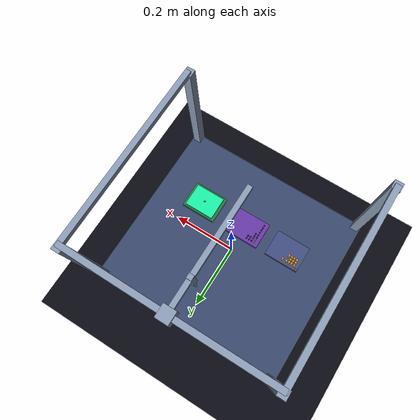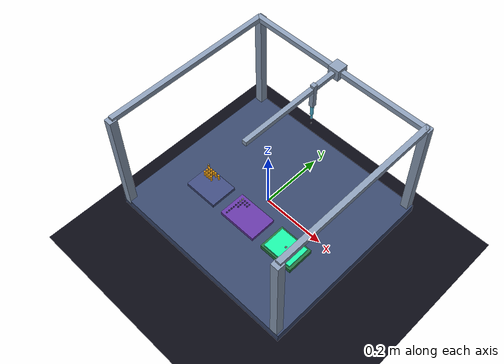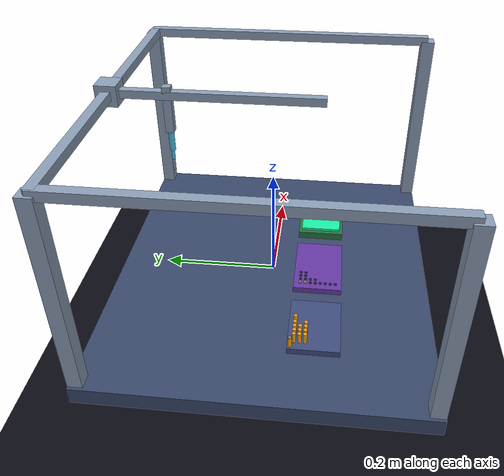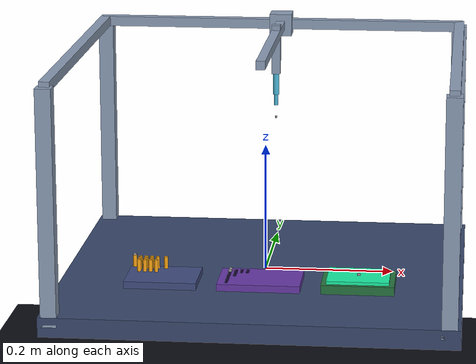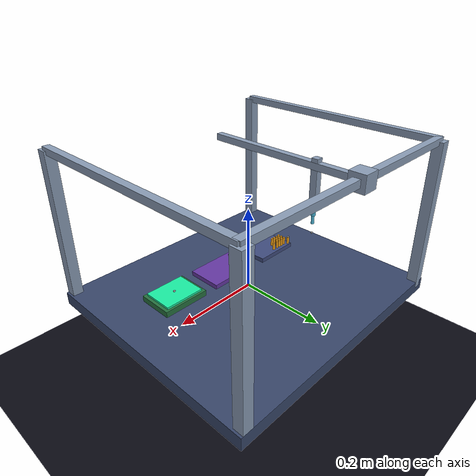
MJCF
<mujoco model="ot2_wetlab">
  <compiler angle="radian" autolimits="true"/>
  <option gravity="0 0 -9.81" timestep="0.002" integrator="RK4"/>

  <visual>
    <global offwidth="960" offheight="540"/>
    <headlight ambient=".45 .48 .58" diffuse=".9 .9 .95" specular=".3 .3 .3"/>
    <rgba haze=".07 .07 .12 1"/>
  </visual>

  <asset>
    <material name="deck"     rgba=".22 .28 .42 1"/>
    <material name="frame"    rgba=".55 .62 .72 1" specular=".8" shininess=".5"/>
    <material name="rack"     rgba=".25 .30 .50 1"/>
    <material name="plate"    rgba=".40 .22 .65 1"/>
    <material name="trough"   rgba=".15 .45 .25 1"/>
    <material name="pipette"  rgba=".30 .72 .85 1" specular=".9" shininess=".6"/>
    <material name="tip_idle" rgba=".98 .65 .08 1"/>
    <material name="tip_on"   rgba=".98 .88 .15 1" emission=".25"/>
    <material name="reagent"  rgba=".10 .95 .65 .95" emission=".05"/>
    <material name="liquid"   rgba=".10 .72 .98 .92" emission=".05"/>
    <material name="well_e"   rgba=".15 .10 .28 1"/>
    <material name="well_f"   rgba=".08 .55 .98 .95" emission=".12"/>
  </asset>

  <worldbody>
    <!-- Background floor -->
    <geom type="plane" size="1.5 1.5 .01" rgba=".04 .04 .08 1" pos="0 0 -.23"/>

    <!-- ── DECK ──────────────────────────────────────────────────── -->
    <body name="deck" pos="0 0 0">
      <geom type="box" size=".312 .282 .015" pos="0 0 -.015" material="deck"/>

      <!-- Corner posts -->
      <geom type="box" size=".012 .012 .18" pos="-.295 -.27  .165" material="frame"/>
      <geom type="box" size=".012 .012 .18" pos="-.295  .27  .165" material="frame"/>
      <geom type="box" size=".012 .012 .18" pos=" .295 -.27  .165" material="frame"/>
      <geom type="box" size=".012 .012 .18" pos=" .295  .27  .165" material="frame"/>
      <!-- X rail (top, back) -->
      <geom type="box" size=".300 .008 .008" pos="0 .265 .345" material="frame"/>
      <!-- Y support rails (sides) -->
      <geom type="box" size=".008 .270 .008" pos="-.295 0 .345" material="frame"/>
      <geom type="box" size=".008 .270 .008" pos=" .295 0 .345" material="frame"/>

      <!-- ── SLOT 1: TIPRACK  (x=-.152, y=-.085) ────────────────── -->
      <body name="tiprack" pos="-.152 -.085 0">
        <geom type="box" size=".056 .043 .007" pos="0 0 .004" material="rack"/>
        <!-- Tip grid: representative 4×3 block, rest implied -->
        <geom type="cylinder" size=".003 .011" pos="-.040  .032 .019" material="tip_idle"/>
        <geom type="cylinder" size=".003 .011" pos="-.040  .023 .019" material="tip_idle"/>
        <geom type="cylinder" size=".003 .011" pos="-.040  .014 .019" material="tip_idle"/>
        <geom type="cylinder" size=".003 .011" pos="-.031  .032 .019" material="tip_idle"/>
        <geom type="cylinder" size=".003 .011" pos="-.031  .023 .019" material="tip_idle"/>
        <geom type="cylinder" size=".003 .011" pos="-.031  .014 .019" material="tip_idle"/>
        <geom type="cylinder" size=".003 .011" pos="-.022  .032 .019" material="tip_idle"/>
        <geom type="cylinder" size=".003 .011" pos="-.022  .023 .019" material="tip_idle"/>
        <geom type="cylinder" size=".003 .011" pos="-.022  .014 .019" material="tip_idle"/>
        <geom type="cylinder" size=".003 .011" pos="-.013  .032 .019" material="tip_idle"/>
        <geom type="cylinder" size=".003 .011" pos="-.013  .014 .019" material="tip_idle"/>
        <geom type="cylinder" size=".003 .011" pos="  0    .032 .019" material="tip_idle"/>
        <!-- A1 tip (will be toggled via rgba in env) -->
        <geom name="tip_A1" type="cylinder" size=".003 .011" pos="-.050  .038 .019" material="tip_idle"/>
        <site name="site_tipA1" pos="-.050 .038 .030" size=".003"/>
      </body>

      <!-- ── SLOT 2: 96-WELL PLATE  (x=0, y=-.085) ──────────────── -->
      <body name="plate" pos="0 -.085 0">
        <geom type="box" size=".064 .043 .007" pos="0 0 .004" material="plate"/>
        <!-- Render all 8 rows × 4 cols (representative) -->
        <!-- Col 1 (x=-.050): rows A-H -->
        <geom name="w_A1" type="cylinder" size=".0027 .004" pos="-.050  .031 .008" material="well_e"/>
        <geom name="w_B1" type="cylinder" size=".0027 .004" pos="-.050  .022 .008" material="well_e"/>
        <geom name="w_C1" type="cylinder" size=".0027 .004" pos="-.050  .013 .008" material="well_e"/>
        <geom name="w_D1" type="cylinder" size=".0027 .004" pos="-.050  .004 .008" material="well_e"/>
        <geom name="w_E1" type="cylinder" size=".0027 .004" pos="-.050 -.005 .008" material="well_e"/>
        <geom name="w_F1" type="cylinder" size=".0027 .004" pos="-.050 -.014 .008" material="well_e"/>
        <geom name="w_G1" type="cylinder" size=".0027 .004" pos="-.050 -.023 .008" material="well_e"/>
        <geom name="w_H1" type="cylinder" size=".0027 .004" pos="-.050 -.032 .008" material="well_e"/>
        <!-- Col 2-4 (simplified) -->
        <geom type="cylinder" size=".0027 .004" pos="-.041 .031 .008" material="well_e"/>
        <geom type="cylinder" size=".0027 .004" pos="-.041 .022 .008" material="well_e"/>
        <geom type="cylinder" size=".0027 .004" pos="-.041 .013 .008" material="well_e"/>
        <geom type="cylinder" size=".0027 .004" pos="-.041 .004 .008" material="well_e"/>
        <geom type="cylinder" size=".0027 .004" pos="-.032 .031 .008" material="well_e"/>
        <geom type="cylinder" size=".0027 .004" pos="-.032 .022 .008" material="well_e"/>
        <geom type="cylinder" size=".0027 .004" pos="-.023 .031 .008" material="well_e"/>
        <geom type="cylinder" size=".0027 .004" pos="-.023 .022 .008" material="well_e"/>
        <site name="site_A1" pos="-.050  .031 .013" size=".003"/>
        <site name="site_B1" pos="-.050  .022 .013" size=".003"/>
      </body>

      <!-- ── SLOT 3: TROUGH  (x=.152, y=-.085) ─────────────────── -->
      <body name="trough" pos=".152 -.085 0">
        <geom type="box" size=".056 .043 .009" pos="0 0 .005" material="trough"/>
        <geom name="reagent_fill" type="box" size=".048 .037 .005" pos="0 0 .014" material="reagent"/>
        <site name="site_trough" pos="0 0 .019" size=".003"/>
      </body>

      <!-- ── PIPETTE GANTRY  (Cartesian XYZ) ────────────────────── -->
      <!-- X carriage rides the top rail -->
      <body name="x_carriage" pos="0 .265 .345">
        <inertial pos="0 0 0" mass=".5" diaginertia=".001 .001 .001"/>
        <joint name="j_x" type="slide" axis="1 0 0" range="-.29 .29" damping="80"/>
        <geom type="box" size=".018 .018 .018" material="frame"/>
        <!-- Arm extending forward from rail -->
        <geom type="box" size=".007 .175 .007" pos="0 -.175 0" material="frame"/>

        <!-- Y offset for pipette reach (deck effectively moves in Y) -->
        <body name="y_head" pos="0 -.095 0">
          <inertial pos="0 0 0" mass=".3" diaginertia=".0005 .0005 .0005"/>
          <joint name="j_y" type="slide" axis="0 1 0" range="-.18 .18" damping="80"/>

          <!-- Z column + pipette -->
          <body name="z_column" pos="0 0 0">
            <inertial pos="0 0 -.08" mass=".2" diaginertia=".0003 .0003 .0003"/>
            <joint name="j_z" type="slide" axis="0 0 1" range="-.32 .02" damping="80"/>

            <!-- Column -->
            <geom type="box" size=".007 .007 .04" pos="0 0 -.025" material="frame"/>
            <!-- Pipette body -->
            <geom type="cylinder" size=".005 .025" pos="0 0 -.075" material="pipette"/>
            <!-- Taper -->
            <geom type="cylinder" fromto="0 0 -.100 0 0 -.118" size=".003" material="pipette"/>
            <!-- Detachable tip (rgba alpha=0 when no tip) -->
            <geom name="pip_tip" type="cylinder" fromto="0 0 -.118 0 0 -.138"
                  size=".0025" material="tip_idle" rgba=".95 .8 .1 0"/>
            <!-- Liquid indicator (alpha=0 when empty) -->
            <geom name="pip_liquid" type="cylinder" size=".0022 .009" pos="0 0 -.126"
                  material="liquid" rgba=".0 .62 .92 0"/>

            <site name="pipette_tip" pos="0 0 -.138" size=".002"/>
          </body>
        </body>
      </body>
    </body>
    <!-- Cameras: euler in degrees, pos in world frame, lookat = scene centre -->
    <camera name="iso"   pos=".45 -.50 .38" euler="65 0 40"/>
    <camera name="side"  pos="0   -.70 .22" euler="73 0 0"/>
    <camera name="top"   pos="0     0  .60" euler="0 0 0"/>
    <camera name="front" pos="0   -.62 .16" euler="80 0 0"/>
  </worldbody>

  <!-- Position-controlled Cartesian actuators -->
  <actuator>
    <position name="act_x" joint="j_x" kp="8000" kv="400" ctrlrange="-.29 .29"/>
    <position name="act_y" joint="j_y" kp="8000" kv="400" ctrlrange="-.18 .18"/>
    <position name="act_z" joint="j_z" kp="8000" kv="400" ctrlrange="-.32 .02"/>
  </actuator>

</mujoco>
